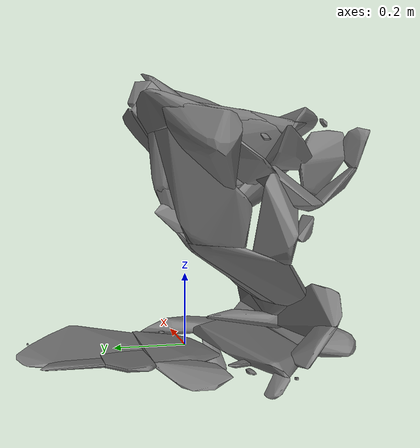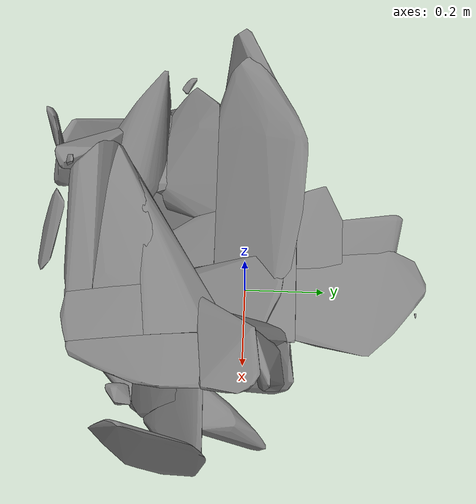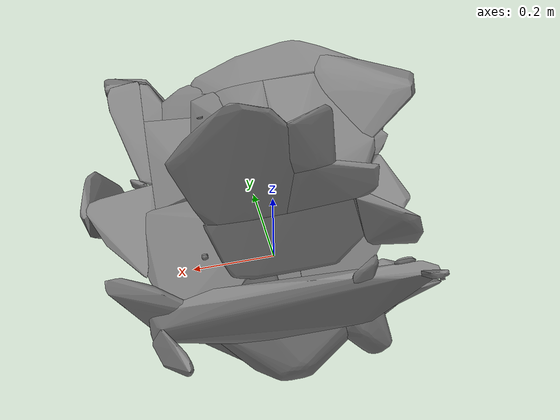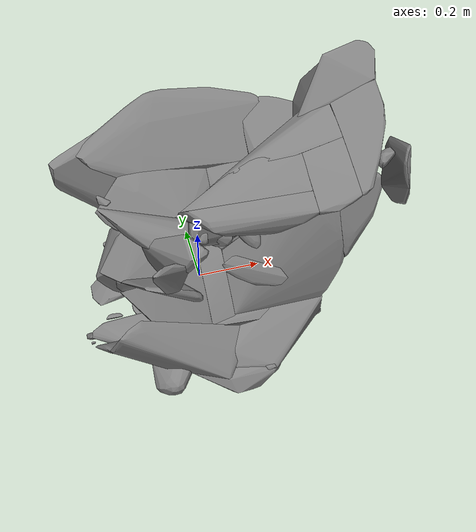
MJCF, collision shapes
<?xml version='1.0' encoding='utf-8'?>
<mujoco model="scene">
  <compiler angle="radian" meshdir="." />
  <option gravity="0 0 -9.81" />
  <default>
    <default class="visual">
      <geom group="2" type="mesh" contype="0" conaffinity="0" />
    </default>
    <default class="collision">
      <geom group="3" type="mesh" contype="1" conaffinity="1" condim="4" friction="1 0.005 0.0001" />
    </default>
  </default>
  <asset>
    <material name="material_0" specular="0.4000000000000001" shininess="0.001" rgba="0.53725490 0.51372549 0.47843137 1.0" />
    <mesh file="scene.obj" />
    <mesh name="scene_collision_000" file="scene_collision_000.obj" />
    <mesh name="scene_collision_001" file="scene_collision_001.obj" />
    <mesh name="scene_collision_002" file="scene_collision_002.obj" />
    <mesh name="scene_collision_003" file="scene_collision_003.obj" />
    <mesh name="scene_collision_004" file="scene_collision_004.obj" />
    <mesh name="scene_collision_005" file="scene_collision_005.obj" />
    <mesh name="scene_collision_006" file="scene_collision_006.obj" />
    <mesh name="scene_collision_007" file="scene_collision_007.obj" />
    <mesh name="scene_collision_008" file="scene_collision_008.obj" />
    <mesh name="scene_collision_009" file="scene_collision_009.obj" />
    <mesh name="scene_collision_010" file="scene_collision_010.obj" />
    <mesh name="scene_collision_011" file="scene_collision_011.obj" />
    <mesh name="scene_collision_012" file="scene_collision_012.obj" />
    <mesh name="scene_collision_013" file="scene_collision_013.obj" />
    <mesh name="scene_collision_014" file="scene_collision_014.obj" />
    <mesh name="scene_collision_015" file="scene_collision_015.obj" />
    <mesh name="scene_collision_016" file="scene_collision_016.obj" />
    <mesh name="scene_collision_017" file="scene_collision_017.obj" />
    <mesh name="scene_collision_018" file="scene_collision_018.obj" />
    <mesh name="scene_collision_019" file="scene_collision_019.obj" />
    <mesh name="scene_collision_020" file="scene_collision_020.obj" />
    <mesh name="scene_collision_021" file="scene_collision_021.obj" />
    <mesh name="scene_collision_022" file="scene_collision_022.obj" />
    <mesh name="scene_collision_023" file="scene_collision_023.obj" />
    <mesh name="scene_collision_024" file="scene_collision_024.obj" />
    <mesh name="scene_collision_025" file="scene_collision_025.obj" />
    <mesh name="scene_collision_026" file="scene_collision_026.obj" />
    <mesh name="scene_collision_027" file="scene_collision_027.obj" />
    <mesh name="scene_collision_028" file="scene_collision_028.obj" />
    <mesh name="scene_collision_029" file="scene_collision_029.obj" />
    <mesh name="scene_collision_030" file="scene_collision_030.obj" />
    <mesh name="scene_collision_031" file="scene_collision_031.obj" />
    <mesh name="scene_collision_032" file="scene_collision_032.obj" />
    <mesh name="scene_collision_033" file="scene_collision_033.obj" />
    <mesh name="scene_collision_034" file="scene_collision_034.obj" />
    <mesh name="scene_collision_035" file="scene_collision_035.obj" />
    <mesh name="scene_collision_036" file="scene_collision_036.obj" />
    <mesh name="scene_collision_037" file="scene_collision_037.obj" />
    <mesh name="scene_collision_038" file="scene_collision_038.obj" />
    <mesh name="scene_collision_039" file="scene_collision_039.obj" />
    <mesh name="scene_collision_040" file="scene_collision_040.obj" />
    <mesh name="scene_collision_041" file="scene_collision_041.obj" />
    <mesh name="scene_collision_042" file="scene_collision_042.obj" />
    <mesh name="scene_collision_043" file="scene_collision_043.obj" />
    <mesh name="scene_collision_044" file="scene_collision_044.obj" />
    <mesh name="scene_collision_045" file="scene_collision_045.obj" />
    <mesh name="scene_collision_046" file="scene_collision_046.obj" />
    <mesh name="scene_collision_047" file="scene_collision_047.obj" />
    <mesh name="scene_collision_048" file="scene_collision_048.obj" />
    <mesh name="scene_collision_049" file="scene_collision_049.obj" />
    <mesh name="scene_collision_050" file="scene_collision_050.obj" />
    <mesh name="scene_collision_051" file="scene_collision_051.obj" />
    <mesh name="scene_collision_052" file="scene_collision_052.obj" />
    <mesh name="scene_collision_053" file="scene_collision_053.obj" />
    <mesh name="scene_collision_054" file="scene_collision_054.obj" />
    <mesh name="scene_collision_055" file="scene_collision_055.obj" />
    <mesh name="scene_collision_056" file="scene_collision_056.obj" />
    <mesh name="scene_collision_057" file="scene_collision_057.obj" />
    <mesh name="scene_collision_058" file="scene_collision_058.obj" />
    <mesh name="scene_collision_059" file="scene_collision_059.obj" />
    <mesh name="scene_collision_060" file="scene_collision_060.obj" />
    <mesh name="scene_collision_061" file="scene_collision_061.obj" />
    <mesh name="scene_collision_062" file="scene_collision_062.obj" />
    <mesh name="scene_collision_063" file="scene_collision_063.obj" />
  </asset>
  <worldbody>
    <body name="scene">
      <geom material="material_0" mesh="scene" class="visual" contype="0" conaffinity="0" group="2" />
      <geom name="scene_collision_000" class="collision" mesh="scene_collision_000" contype="1" conaffinity="1" condim="4" friction="1 0.005 0.0001" />
      <geom name="scene_collision_001" class="collision" mesh="scene_collision_001" contype="1" conaffinity="1" condim="4" friction="1 0.005 0.0001" />
      <geom name="scene_collision_002" class="collision" mesh="scene_collision_002" contype="1" conaffinity="1" condim="4" friction="1 0.005 0.0001" />
      <geom name="scene_collision_003" class="collision" mesh="scene_collision_003" contype="1" conaffinity="1" condim="4" friction="1 0.005 0.0001" />
      <geom name="scene_collision_004" class="collision" mesh="scene_collision_004" contype="1" conaffinity="1" condim="4" friction="1 0.005 0.0001" />
      <geom name="scene_collision_005" class="collision" mesh="scene_collision_005" contype="1" conaffinity="1" condim="4" friction="1 0.005 0.0001" />
      <geom name="scene_collision_006" class="collision" mesh="scene_collision_006" contype="1" conaffinity="1" condim="4" friction="1 0.005 0.0001" />
      <geom name="scene_collision_007" class="collision" mesh="scene_collision_007" contype="1" conaffinity="1" condim="4" friction="1 0.005 0.0001" />
      <geom name="scene_collision_008" class="collision" mesh="scene_collision_008" contype="1" conaffinity="1" condim="4" friction="1 0.005 0.0001" />
      <geom name="scene_collision_009" class="collision" mesh="scene_collision_009" contype="1" conaffinity="1" condim="4" friction="1 0.005 0.0001" />
      <geom name="scene_collision_010" class="collision" mesh="scene_collision_010" contype="1" conaffinity="1" condim="4" friction="1 0.005 0.0001" />
      <geom name="scene_collision_011" class="collision" mesh="scene_collision_011" contype="1" conaffinity="1" condim="4" friction="1 0.005 0.0001" />
      <geom name="scene_collision_012" class="collision" mesh="scene_collision_012" contype="1" conaffinity="1" condim="4" friction="1 0.005 0.0001" />
      <geom name="scene_collision_013" class="collision" mesh="scene_collision_013" contype="1" conaffinity="1" condim="4" friction="1 0.005 0.0001" />
      <geom name="scene_collision_014" class="collision" mesh="scene_collision_014" contype="1" conaffinity="1" condim="4" friction="1 0.005 0.0001" />
      <geom name="scene_collision_015" class="collision" mesh="scene_collision_015" contype="1" conaffinity="1" condim="4" friction="1 0.005 0.0001" />
      <geom name="scene_collision_016" class="collision" mesh="scene_collision_016" contype="1" conaffinity="1" condim="4" friction="1 0.005 0.0001" />
      <geom name="scene_collision_017" class="collision" mesh="scene_collision_017" contype="1" conaffinity="1" condim="4" friction="1 0.005 0.0001" />
      <geom name="scene_collision_018" class="collision" mesh="scene_collision_018" contype="1" conaffinity="1" condim="4" friction="1 0.005 0.0001" />
      <geom name="scene_collision_019" class="collision" mesh="scene_collision_019" contype="1" conaffinity="1" condim="4" friction="1 0.005 0.0001" />
      <geom name="scene_collision_020" class="collision" mesh="scene_collision_020" contype="1" conaffinity="1" condim="4" friction="1 0.005 0.0001" />
      <geom name="scene_collision_021" class="collision" mesh="scene_collision_021" contype="1" conaffinity="1" condim="4" friction="1 0.005 0.0001" />
      <geom name="scene_collision_022" class="collision" mesh="scene_collision_022" contype="1" conaffinity="1" condim="4" friction="1 0.005 0.0001" />
      <geom name="scene_collision_023" class="collision" mesh="scene_collision_023" contype="1" conaffinity="1" condim="4" friction="1 0.005 0.0001" />
      <geom name="scene_collision_024" class="collision" mesh="scene_collision_024" contype="1" conaffinity="1" condim="4" friction="1 0.005 0.0001" />
      <geom name="scene_collision_025" class="collision" mesh="scene_collision_025" contype="1" conaffinity="1" condim="4" friction="1 0.005 0.0001" />
      <geom name="scene_collision_026" class="collision" mesh="scene_collision_026" contype="1" conaffinity="1" condim="4" friction="1 0.005 0.0001" />
      <geom name="scene_collision_027" class="collision" mesh="scene_collision_027" contype="1" conaffinity="1" condim="4" friction="1 0.005 0.0001" />
      <geom name="scene_collision_028" class="collision" mesh="scene_collision_028" contype="1" conaffinity="1" condim="4" friction="1 0.005 0.0001" />
      <geom name="scene_collision_029" class="collision" mesh="scene_collision_029" contype="1" conaffinity="1" condim="4" friction="1 0.005 0.0001" />
      <geom name="scene_collision_030" class="collision" mesh="scene_collision_030" contype="1" conaffinity="1" condim="4" friction="1 0.005 0.0001" />
      <geom name="scene_collision_031" class="collision" mesh="scene_collision_031" contype="1" conaffinity="1" condim="4" friction="1 0.005 0.0001" />
      <geom name="scene_collision_032" class="collision" mesh="scene_collision_032" contype="1" conaffinity="1" condim="4" friction="1 0.005 0.0001" />
      <geom name="scene_collision_033" class="collision" mesh="scene_collision_033" contype="1" conaffinity="1" condim="4" friction="1 0.005 0.0001" />
      <geom name="scene_collision_034" class="collision" mesh="scene_collision_034" contype="1" conaffinity="1" condim="4" friction="1 0.005 0.0001" />
      <geom name="scene_collision_035" class="collision" mesh="scene_collision_035" contype="1" conaffinity="1" condim="4" friction="1 0.005 0.0001" />
      <geom name="scene_collision_036" class="collision" mesh="scene_collision_036" contype="1" conaffinity="1" condim="4" friction="1 0.005 0.0001" />
      <geom name="scene_collision_037" class="collision" mesh="scene_collision_037" contype="1" conaffinity="1" condim="4" friction="1 0.005 0.0001" />
      <geom name="scene_collision_038" class="collision" mesh="scene_collision_038" contype="1" conaffinity="1" condim="4" friction="1 0.005 0.0001" />
      <geom name="scene_collision_039" class="collision" mesh="scene_collision_039" contype="1" conaffinity="1" condim="4" friction="1 0.005 0.0001" />
      <geom name="scene_collision_040" class="collision" mesh="scene_collision_040" contype="1" conaffinity="1" condim="4" friction="1 0.005 0.0001" />
      <geom name="scene_collision_041" class="collision" mesh="scene_collision_041" contype="1" conaffinity="1" condim="4" friction="1 0.005 0.0001" />
      <geom name="scene_collision_042" class="collision" mesh="scene_collision_042" contype="1" conaffinity="1" condim="4" friction="1 0.005 0.0001" />
      <geom name="scene_collision_043" class="collision" mesh="scene_collision_043" contype="1" conaffinity="1" condim="4" friction="1 0.005 0.0001" />
      <geom name="scene_collision_044" class="collision" mesh="scene_collision_044" contype="1" conaffinity="1" condim="4" friction="1 0.005 0.0001" />
      <geom name="scene_collision_045" class="collision" mesh="scene_collision_045" contype="1" conaffinity="1" condim="4" friction="1 0.005 0.0001" />
      <geom name="scene_collision_046" class="collision" mesh="scene_collision_046" contype="1" conaffinity="1" condim="4" friction="1 0.005 0.0001" />
      <geom name="scene_collision_047" class="collision" mesh="scene_collision_047" contype="1" conaffinity="1" condim="4" friction="1 0.005 0.0001" />
      <geom name="scene_collision_048" class="collision" mesh="scene_collision_048" contype="1" conaffinity="1" condim="4" friction="1 0.005 0.0001" />
      <geom name="scene_collision_049" class="collision" mesh="scene_collision_049" contype="1" conaffinity="1" condim="4" friction="1 0.005 0.0001" />
      <geom name="scene_collision_050" class="collision" mesh="scene_collision_050" contype="1" conaffinity="1" condim="4" friction="1 0.005 0.0001" />
      <geom name="scene_collision_051" class="collision" mesh="scene_collision_051" contype="1" conaffinity="1" condim="4" friction="1 0.005 0.0001" />
      <geom name="scene_collision_052" class="collision" mesh="scene_collision_052" contype="1" conaffinity="1" condim="4" friction="1 0.005 0.0001" />
      <geom name="scene_collision_053" class="collision" mesh="scene_collision_053" contype="1" conaffinity="1" condim="4" friction="1 0.005 0.0001" />
      <geom name="scene_collision_054" class="collision" mesh="scene_collision_054" contype="1" conaffinity="1" condim="4" friction="1 0.005 0.0001" />
      <geom name="scene_collision_055" class="collision" mesh="scene_collision_055" contype="1" conaffinity="1" condim="4" friction="1 0.005 0.0001" />
      <geom name="scene_collision_056" class="collision" mesh="scene_collision_056" contype="1" conaffinity="1" condim="4" friction="1 0.005 0.0001" />
      <geom name="scene_collision_057" class="collision" mesh="scene_collision_057" contype="1" conaffinity="1" condim="4" friction="1 0.005 0.0001" />
      <geom name="scene_collision_058" class="collision" mesh="scene_collision_058" contype="1" conaffinity="1" condim="4" friction="1 0.005 0.0001" />
      <geom name="scene_collision_059" class="collision" mesh="scene_collision_059" contype="1" conaffinity="1" condim="4" friction="1 0.005 0.0001" />
      <geom name="scene_collision_060" class="collision" mesh="scene_collision_060" contype="1" conaffinity="1" condim="4" friction="1 0.005 0.0001" />
      <geom name="scene_collision_061" class="collision" mesh="scene_collision_061" contype="1" conaffinity="1" condim="4" friction="1 0.005 0.0001" />
      <geom name="scene_collision_062" class="collision" mesh="scene_collision_062" contype="1" conaffinity="1" condim="4" friction="1 0.005 0.0001" />
      <geom name="scene_collision_063" class="collision" mesh="scene_collision_063" contype="1" conaffinity="1" condim="4" friction="1 0.005 0.0001" />
    </body>
  </worldbody>
</mujoco>
